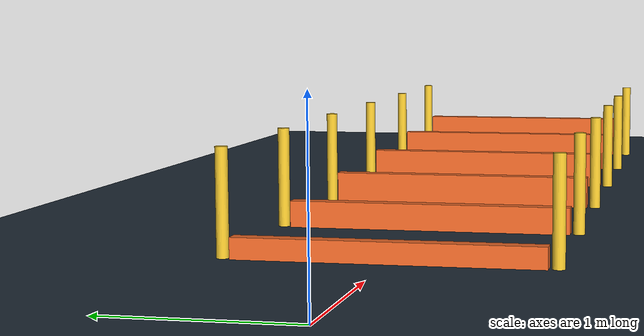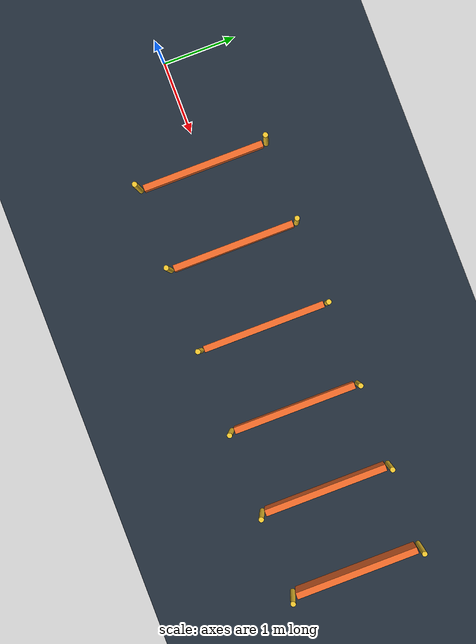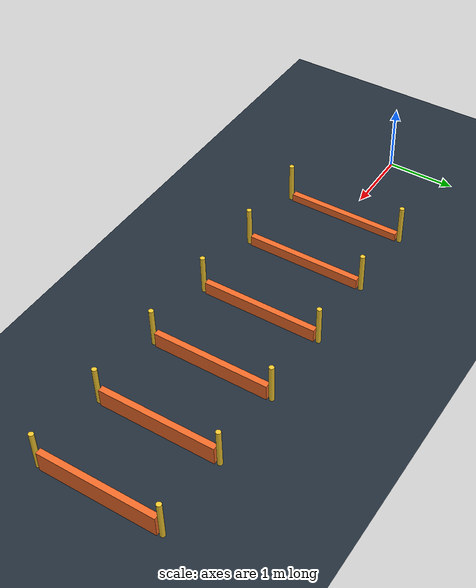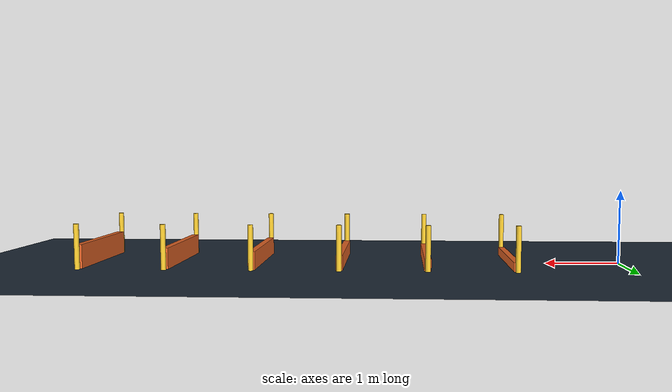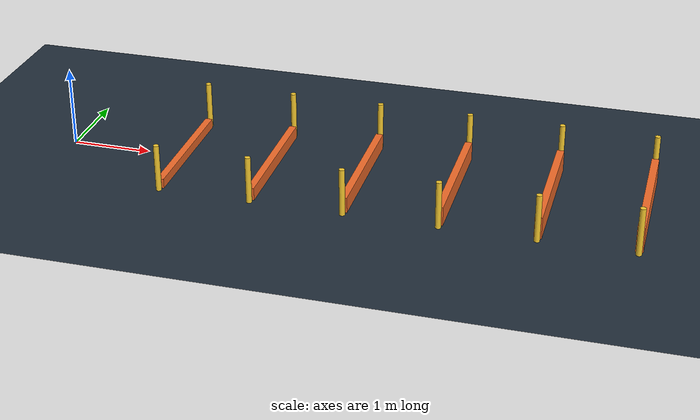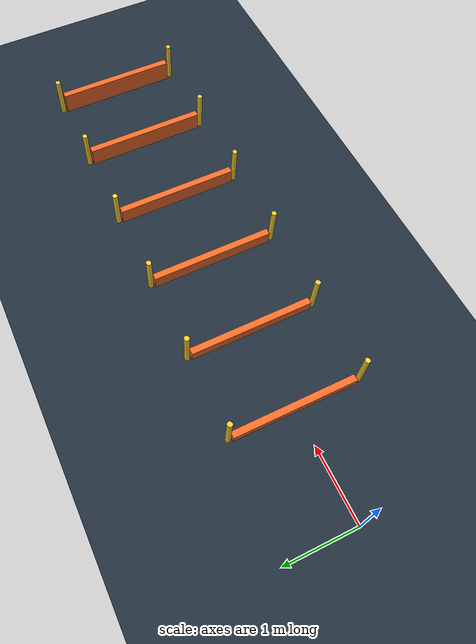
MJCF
<?xml version='1.0' encoding='utf-8'?>
<mujoco model="hurdle course"><asset><texture type="2d" name="groundplane" builtin="checker" mark="edge" rgb1="0.18 0.24 0.30" rgb2="0.08 0.12 0.16" markrgb="0.7 0.7 0.7" width="300" height="300" /><material name="groundplane" texture="groundplane" texuniform="true" texrepeat="8 8" reflectance="0.05" /></asset><worldbody><geom name="floor" type="plane" pos="0 0 0" size="0 0 0.05" material="groundplane" /><geom name="hurdle_0" type="box" pos="1.5 0 0.06" size="0.045 0.85 0.06" rgba="0.95 0.42 0.16 1" /><geom name="marker_0_-1" type="cylinder" pos="1.5 -0.9 0.3" size="0.035 0.3" rgba="0.95 0.78 0.18 1" contype="0" conaffinity="0" /><geom name="marker_0_1" type="cylinder" pos="1.5 0.9 0.3" size="0.035 0.3" rgba="0.95 0.78 0.18 1" contype="0" conaffinity="0" /><geom name="hurdle_1" type="box" pos="2.65 0 0.08" size="0.045 0.85 0.08" rgba="0.95 0.42 0.16 1" /><geom name="marker_1_-1" type="cylinder" pos="2.65 -0.9 0.3" size="0.035 0.3" rgba="0.95 0.78 0.18 1" contype="0" conaffinity="0" /><geom name="marker_1_1" type="cylinder" pos="2.65 0.9 0.3" size="0.035 0.3" rgba="0.95 0.78 0.18 1" contype="0" conaffinity="0" /><geom name="hurdle_2" type="box" pos="3.8 0 0.1" size="0.045 0.85 0.1" rgba="0.95 0.42 0.16 1" /><geom name="marker_2_-1" type="cylinder" pos="3.8 -0.9 0.3" size="0.035 0.3" rgba="0.95 0.78 0.18 1" contype="0" conaffinity="0" /><geom name="marker_2_1" type="cylinder" pos="3.8 0.9 0.3" size="0.035 0.3" rgba="0.95 0.78 0.18 1" contype="0" conaffinity="0" /><geom name="hurdle_3" type="box" pos="4.95 0 0.12" size="0.045 0.85 0.12" rgba="0.95 0.42 0.16 1" /><geom name="marker_3_-1" type="cylinder" pos="4.95 -0.9 0.3" size="0.035 0.3" rgba="0.95 0.78 0.18 1" contype="0" conaffinity="0" /><geom name="marker_3_1" type="cylinder" pos="4.95 0.9 0.3" size="0.035 0.3" rgba="0.95 0.78 0.18 1" contype="0" conaffinity="0" /><geom name="hurdle_4" type="box" pos="6.1 0 0.14" size="0.045 0.85 0.14" rgba="0.95 0.42 0.16 1" /><geom name="marker_4_-1" type="cylinder" pos="6.1 -0.9 0.3" size="0.035 0.3" rgba="0.95 0.78 0.18 1" contype="0" conaffinity="0" /><geom name="marker_4_1" type="cylinder" pos="6.1 0.9 0.3" size="0.035 0.3" rgba="0.95 0.78 0.18 1" contype="0" conaffinity="0" /><geom name="hurdle_5" type="box" pos="7.25 0 0.16" size="0.045 0.85 0.16" rgba="0.95 0.42 0.16 1" /><geom name="marker_5_-1" type="cylinder" pos="7.25 -0.9 0.3" size="0.035 0.3" rgba="0.95 0.78 0.18 1" contype="0" conaffinity="0" /><geom name="marker_5_1" type="cylinder" pos="7.25 0.9 0.3" size="0.035 0.3" rgba="0.95 0.78 0.18 1" contype="0" conaffinity="0" /></worldbody></mujoco>
